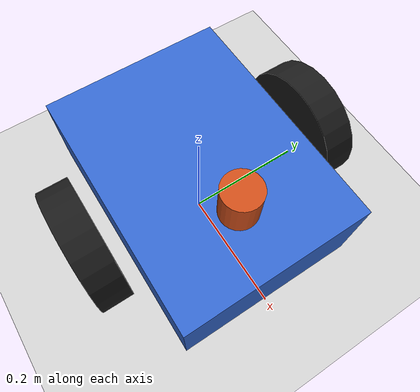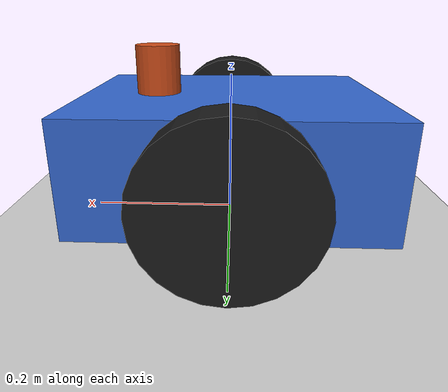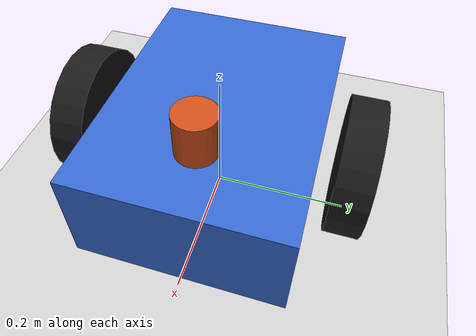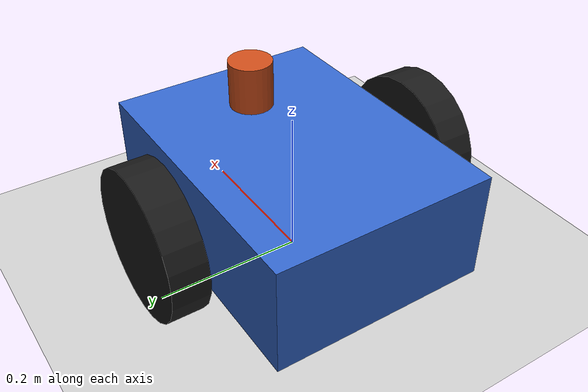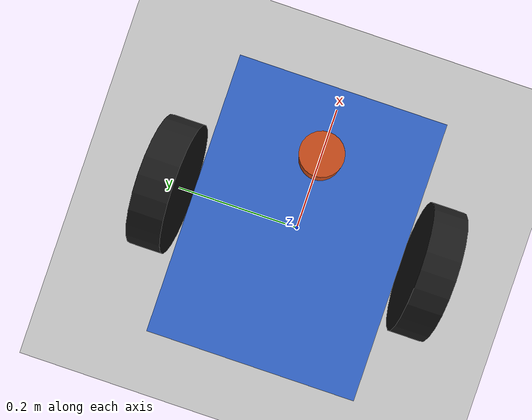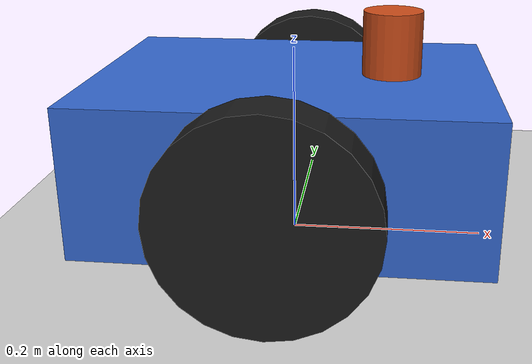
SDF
<?xml version="1.0" ?>
<sdf version="1.9">
  <world name="openrover_world">

    <physics name="1ms" type="ignored">
      <max_step_size>0.001</max_step_size>
      <real_time_factor>1.0</real_time_factor>
    </physics>

    <plugin filename="gz-sim-physics-system" name="gz::sim::systems::Physics"></plugin>
    <plugin filename="gz-sim-user-commands-system" name="gz::sim::systems::UserCommands"></plugin>
    <plugin filename="gz-sim-scene-broadcaster-system" name="gz::sim::systems::SceneBroadcaster"></plugin>
    <plugin filename="gz-sim-sensors-system" name="gz::sim::systems::Sensors">
      <render_engine>ogre2</render_engine>
    </plugin>

    <plugin filename="gz-sim-imu-system" name="gz::sim::systems::Imu">
    </plugin>

    <light type="directional" name="sun">
      <cast_shadows>true</cast_shadows>
      <pose>0 0 10 0 0 0</pose>
      <diffuse>0.8 0.8 0.8 1</diffuse>
      <specular>0.2 0.2 0.2 1</specular>
      <attenuation>
        <range>1000</range>
        <constant>0.9</constant>
        <linear>0.01</linear>
        <quadratic>0.001</quadratic>
      </attenuation>
      <direction>-0.5 0.1 -0.9</direction>
    </light>

    <model name="ground_plane">
      <static>true</static>
      <link name="link">
        <collision name="collision">
          <geometry>
            <plane>
              <normal>0 0 1</normal>
              <size>100 100</size>
            </plane>
          </geometry>
        </collision>
        <visual name="visual">
          <geometry>
            <plane>
              <normal>0 0 1</normal>
              <size>100 100</size>
            </plane>
          </geometry>
          <material>
            <ambient>0.8 0.8 0.8 1</ambient>
            <diffuse>0.8 0.8 0.8 1</diffuse>
            <specular>0.8 0.8 0.8 1</specular>
          </material>
        </visual>
      </link>
    </model>

    <!-- This pulls in the rover model from simulation/models/rover/.
         Gazebo finds it by name using GZ_SIM_RESOURCE_PATH, which our
         launch file sets to point at our models/ folder. -->
    <include>
      <uri>model://rover</uri>
      <name>rover</name>
      <pose>0 0 0 0 0 0</pose>
    </include>

  </world>
</sdf>

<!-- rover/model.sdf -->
<sdf version="1.9">
  <model name="rover">
    <pose>0 0 0 0 0 0</pose>

    <link name="chassis">
      <pose>0 0 0.1 0 0 0</pose>

      <inertial>
        <mass>5</mass>
        <inertia>
          <ixx>0.046875</ixx>
          <ixy>0</ixy>
          <ixz>0</ixz>
          <iyy>0.076042</iyy>
          <iyz>0</iyz>
          <izz>0.104167</izz>
        </inertia>
      </inertial>

      <visual name="visual">
        <geometry>
          <box>
            <size>0.4 0.3 0.15</size>
          </box>
        </geometry>
        <material>
          <ambient>0.2 0.4 0.8 1</ambient>
          <diffuse>0.2 0.4 0.8 1</diffuse>
          <specular>0.2 0.4 0.8 1</specular>
        </material>
      </visual>

      <collision name="collision">
        <geometry>
          <box>
            <size>0.4 0.3 0.15</size>
          </box>
        </geometry>
      </collision>
    </link>

    <link name="left_wheel">
      <pose relative_to="chassis">0 0.2 0 -1.5708 0 0</pose>

      <!-- Mass and inertia for a solid cylinder: radius 0.1m,
           length (thickness) 0.05m, mass 1kg. -->
      <inertial>
        <mass>1</mass>
        <inertia>
          <ixx>0.0027083</ixx>
          <ixy>0</ixy>
          <ixz>0</ixz>
          <iyy>0.0027083</iyy>
          <iyz>0</iyz>
          <izz>0.005</izz>
        </inertia>
      </inertial>

      <visual name="visual">
        <geometry>
          <cylinder>
            <radius>0.1</radius>
            <length>0.05</length>
          </cylinder>
        </geometry>
        <material>
          <ambient>0.1 0.1 0.1 1</ambient>
          <diffuse>0.1 0.1 0.1 1</diffuse>
          <specular>0.1 0.1 0.1 1</specular>
        </material>
      </visual>

      <collision name="collision">
        <geometry>
          <cylinder>
            <radius>0.1</radius>
            <length>0.05</length>
          </cylinder>
        </geometry>
      </collision>
    </link>

    <link name="right_wheel">
      <pose relative_to="chassis">0 -0.2 0 -1.5708 0 0</pose>

      <inertial>
        <mass>1</mass>
        <inertia>
          <ixx>0.0027083</ixx>
          <ixy>0</ixy>
          <ixz>0</ixz>
          <iyy>0.0027083</iyy>
          <iyz>0</iyz>
          <izz>0.005</izz>
        </inertia>
      </inertial>

      <visual name="visual">
        <geometry>
          <cylinder>
            <radius>0.1</radius>
            <length>0.05</length>
          </cylinder>
        </geometry>
        <material>
          <ambient>0.1 0.1 0.1 1</ambient>
          <diffuse>0.1 0.1 0.1 1</diffuse>
          <specular>0.1 0.1 0.1 1</specular>
        </material>
      </visual>

      <collision name="collision">
        <geometry>
          <cylinder>
            <radius>0.1</radius>
            <length>0.05</length>
          </cylinder>
        </geometry>
      </collision>
    </link>

    <frame name="caster_frame" attached_to="chassis">
      <pose>-0.15 0 -0.05 0 0 0</pose>
    </frame>

    <link name="caster">
      <pose relative_to="caster_frame"/>

      <inertial>
        <mass>0.5</mass>
        <inertia>
          <ixx>0.0005</ixx>
          <ixy>0</ixy>
          <ixz>0</ixz>
          <iyy>0.0005</iyy>
          <iyz>0</iyz>
          <izz>0.0005</izz>
        </inertia>
      </inertial>

      <visual name="visual">
        <geometry>
          <sphere>
            <radius>0.05</radius>
          </sphere>
        </geometry>
        <material>
          <ambient>0.1 0.1 0.1 1</ambient>
          <diffuse>0.1 0.1 0.1 1</diffuse>
          <specular>0.1 0.1 0.1 1</specular>
        </material>
      </visual>

      <collision name="collision">
        <geometry>
          <sphere>
            <radius>0.05</radius>
          </sphere>
        </geometry>
      </collision>
    </link>

    <link name="sensor_mast">
      <pose relative_to="chassis">0.1 0 0.1 0 0 0</pose>

      <inertial>
        <mass>0.2</mass>
        <inertia>
          <ixx>0.000152</ixx>
          <ixy>0</ixy>
          <ixz>0</ixz>
          <iyy>0.000152</iyy>
          <iyz>0</iyz>
          <izz>0.00009</izz>
        </inertia>
      </inertial>

      <visual name="visual">
        <geometry>
          <cylinder>
            <radius>0.03</radius>
            <length>0.08</length>
          </cylinder>
        </geometry>
        <material>
          <ambient>0.8 0.3 0.1 1</ambient>
          <diffuse>0.8 0.3 0.1 1</diffuse>
          <specular>0.8 0.3 0.1 1</specular>
        </material>
      </visual>

      <collision name="collision">
        <geometry>
          <cylinder>
            <radius>0.03</radius>
            <length>0.08</length>
          </cylinder>
        </geometry>
      </collision>

      <sensor name="lidar" type="gpu_lidar">
        <pose>0 0 0.05 0 0 0</pose>
        <topic>lidar</topic>
        <update_rate>10</update_rate>
        <always_on>true</always_on>
        <visualize>true</visualize>
        <gz_frame_id>rover/sensor_mast</gz_frame_id>
        <lidar>
          <scan>
            <horizontal>
              <samples>360</samples>
              <resolution>1</resolution>
              <min_angle>-3.141592653589793</min_angle>
              <max_angle>3.141592653589793</max_angle>
            </horizontal>
            <vertical>
              <samples>1</samples>
              <resolution>1</resolution>
              <min_angle>0</min_angle>
              <max_angle>0</max_angle>
            </vertical>
          </scan>
          <range>
            <min>0.12</min>
            <max>12.0</max>
            <resolution>0.01</resolution>
          </range>
          <noise>
            <type>gaussian</type>
            <mean>0.0</mean>
            <stddev>0.01</stddev>
          </noise>
        </lidar>
      </sensor>

      <sensor name="imu" type="imu">
        <topic>imu</topic>
        <update_rate>100</update_rate>
        <always_on>true</always_on>
        <gz_frame_id>rover/sensor_mast</gz_frame_id>
      </sensor>
    </link>

    <!-- Rigidly bolts the sensor mast to the chassis. A "fixed" joint
         never moves, which is exactly what we want — the sensors
         should be locked to the rover body, not free to swing. -->
    <joint name="sensor_mast_joint" type="fixed">
      <parent>chassis</parent>
      <child>sensor_mast</child>
    </joint>

    <joint name="left_wheel_joint" type="revolute">
      <pose relative_to="left_wheel"/>
      <parent>chassis</parent>
      <child>left_wheel</child>
      <axis>
        <xyz expressed_in="__model__">0 1 0</xyz>
        <limit>
          <lower>-1.79769e+308</lower>
          <upper>1.79769e+308</upper>
        </limit>
      </axis>
    </joint>

    <joint name="right_wheel_joint" type="revolute">
      <pose relative_to="right_wheel"/>
      <parent>chassis</parent>
      <child>right_wheel</child>
      <axis>
        <xyz expressed_in="__model__">0 1 0</xyz>
        <limit>
          <lower>-1.79769e+308</lower>
          <upper>1.79769e+308</upper>
        </limit>
      </axis>
    </joint>

    <joint name="caster_wheel_joint" type="ball">
      <parent>chassis</parent>
      <child>caster</child>
    </joint>

    <plugin filename="gz-sim-diff-drive-system" name="gz::sim::systems::DiffDrive">
      <left_joint>left_wheel_joint</left_joint>
      <right_joint>right_wheel_joint</right_joint>
      <wheel_separation>0.4</wheel_separation>
      <wheel_radius>0.1</wheel_radius>
      <odom_publish_frequency>50</odom_publish_frequency>
      <topic>cmd_vel</topic>
    </plugin>

    <plugin filename="gz-sim-joint-state-publisher-system" name="gz::sim::systems::JointStatePublisher">
    </plugin>

  </model>
</sdf>
